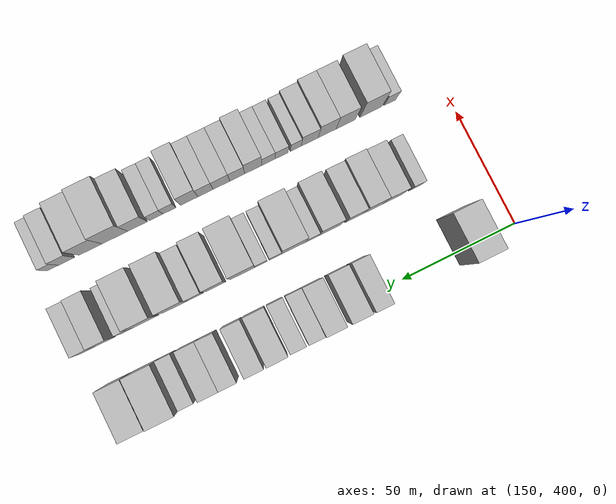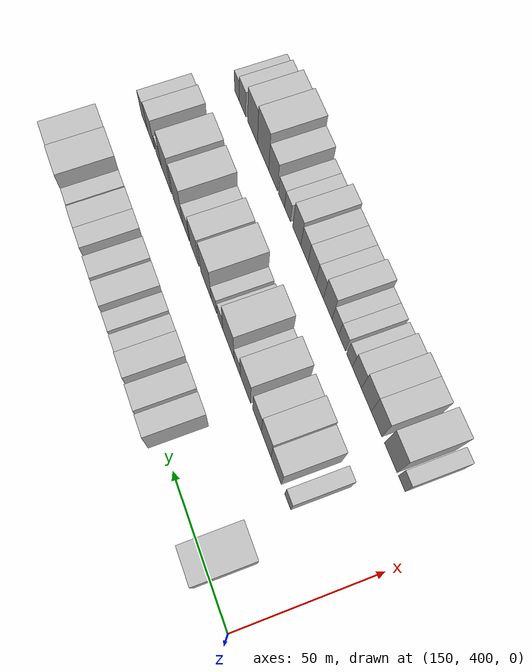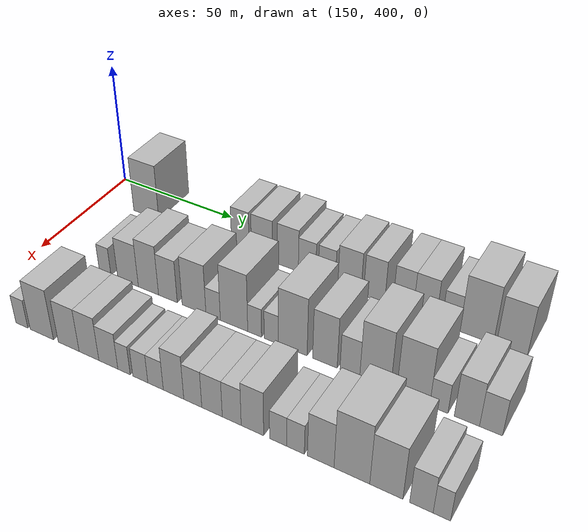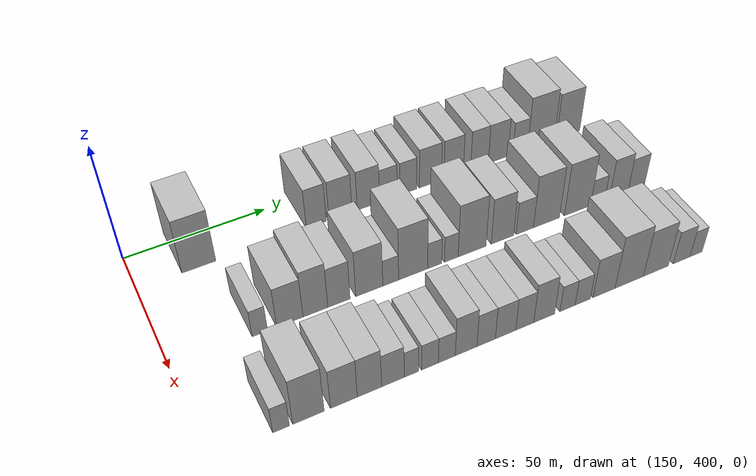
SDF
<sdf version="1.6">
 <world name="default">
  <model name="building_489">
   <static>1</static>
   <pose>155.0000 421.2192 0 0.000000 0.000000 0.000000</pose>
   <link name="link">
    <pose>0 0 12.00 0 0 0</pose>
    <collision name="collision"><geometry><box><size>20.0000 11.6948 24.0000</size></box></geometry></collision>
    <visual name="visual">
     <cast_shadows>0</cast_shadows>
     <geometry><box><size>20.0000 11.6948 24.0000</size></box></geometry>
     <material>
      <script>
       <uri>model://HANNAS_wall/materials/scripts</uri>
       <uri>model://HANNAS_wall/materials/textures</uri>
       <name>vrc/HANNAS_wall</name>
      </script>
     </material>
    </visual>
   </link>
  </model>
  <model name="building_490">
   <static>1</static>
   <pose>155.0000 463.2406 0 0.000000 0.000000 0.000000</pose>
   <link name="link">
    <pose>0 0 9.00 0 0 0</pose>
    <collision name="collision"><geometry><box><size>20.0000 7.4494 18.0000</size></box></geometry></collision>
    <visual name="visual">
     <cast_shadows>0</cast_shadows>
     <geometry><box><size>20.0000 7.4494 18.0000</size></box></geometry>
     <material>
      <script>
       <uri>model://HANNAS_wall/materials/scripts</uri>
       <uri>model://HANNAS_wall/materials/textures</uri>
       <name>vrc/HANNAS_wall</name>
      </script>
     </material>
    </visual>
   </link>
  </model>
  <model name="building_491">
   <static>1</static>
   <pose>155.0000 472.2957 0 0.000000 0.000000 0.000000</pose>
   <link name="link">
    <pose>0 0 9.00 0 0 0</pose>
    <collision name="collision"><geometry><box><size>20.0000 8.6608 18.0000</size></box></geometry></collision>
    <visual name="visual">
     <cast_shadows>0</cast_shadows>
     <geometry><box><size>20.0000 8.6608 18.0000</size></box></geometry>
     <material>
      <script>
       <uri>model://HANNAS_wall/materials/scripts</uri>
       <uri>model://HANNAS_wall/materials/textures</uri>
       <name>vrc/HANNAS_wall</name>
      </script>
     </material>
    </visual>
   </link>
  </model>
  <model name="building_492">
   <static>1</static>
   <pose>155.0000 482.9409 0 0.000000 0.000000 0.000000</pose>
   <link name="link">
    <pose>0 0 9.00 0 0 0</pose>
    <collision name="collision"><geometry><box><size>20.0000 8.6295 18.0000</size></box></geometry></collision>
    <visual name="visual">
     <cast_shadows>0</cast_shadows>
     <geometry><box><size>20.0000 8.6295 18.0000</size></box></geometry>
     <material>
      <script>
       <uri>model://HANNAS_wall/materials/scripts</uri>
       <uri>model://HANNAS_wall/materials/textures</uri>
       <name>vrc/HANNAS_wall</name>
      </script>
     </material>
    </visual>
   </link>
  </model>
  <model name="building_493">
   <static>1</static>
   <pose>155.0000 490.7172 0 0.000000 0.000000 0.000000</pose>
   <link name="link">
    <pose>0 0 7.50 0 0 0</pose>
    <collision name="collision"><geometry><box><size>20.0000 6.9233 15.0000</size></box></geometry></collision>
    <visual name="visual">
     <cast_shadows>0</cast_shadows>
     <geometry><box><size>20.0000 6.9233 15.0000</size></box></geometry>
     <material>
      <script>
       <uri>model://HANNAS_wall/materials/scripts</uri>
       <uri>model://HANNAS_wall/materials/textures</uri>
       <name>vrc/HANNAS_wall</name>
      </script>
     </material>
    </visual>
   </link>
  </model>
  <model name="building_494">
   <static>1</static>
   <pose>155.0000 498.5340 0 0.000000 0.000000 0.000000</pose>
   <link name="link">
    <pose>0 0 7.50 0 0 0</pose>
    <collision name="collision"><geometry><box><size>20.0000 6.7103 15.0000</size></box></geometry></collision>
    <visual name="visual">
     <cast_shadows>0</cast_shadows>
     <geometry><box><size>20.0000 6.7103 15.0000</size></box></geometry>
     <material>
      <script>
       <uri>model://HANNAS_wall/materials/scripts</uri>
       <uri>model://HANNAS_wall/materials/textures</uri>
       <name>vrc/HANNAS_wall</name>
      </script>
     </material>
    </visual>
   </link>
  </model>
  <model name="building_495">
   <static>1</static>
   <pose>155.0000 507.3216 0 0.000000 0.000000 0.000000</pose>
   <link name="link">
    <pose>0 0 9.00 0 0 0</pose>
    <collision name="collision"><geometry><box><size>20.0000 8.8649 18.0000</size></box></geometry></collision>
    <visual name="visual">
     <cast_shadows>0</cast_shadows>
     <geometry><box><size>20.0000 8.8649 18.0000</size></box></geometry>
     <material>
      <script>
       <uri>model://HANNAS_wall/materials/scripts</uri>
       <uri>model://HANNAS_wall/materials/textures</uri>
       <name>vrc/HANNAS_wall</name>
      </script>
     </material>
    </visual>
   </link>
  </model>
  <model name="building_496">
   <static>1</static>
   <pose>155.0000 516.7300 0 0.000000 0.000000 0.000000</pose>
   <link name="link">
    <pose>0 0 9.00 0 0 0</pose>
    <collision name="collision"><geometry><box><size>20.0000 7.9518 18.0000</size></box></geometry></collision>
    <visual name="visual">
     <cast_shadows>0</cast_shadows>
     <geometry><box><size>20.0000 7.9518 18.0000</size></box></geometry>
     <material>
      <script>
       <uri>model://HANNAS_wall/materials/scripts</uri>
       <uri>model://HANNAS_wall/materials/textures</uri>
       <name>vrc/HANNAS_wall</name>
      </script>
     </material>
    </visual>
   </link>
  </model>
  <model name="building_497">
   <static>1</static>
   <pose>155.0000 527.4053 0 0.000000 0.000000 0.000000</pose>
   <link name="link">
    <pose>0 0 9.00 0 0 0</pose>
    <collision name="collision"><geometry><box><size>20.0000 7.3987 18.0000</size></box></geometry></collision>
    <visual name="visual">
     <cast_shadows>0</cast_shadows>
     <geometry><box><size>20.0000 7.3987 18.0000</size></box></geometry>
     <material>
      <script>
       <uri>model://HANNAS_wall/materials/scripts</uri>
       <uri>model://HANNAS_wall/materials/textures</uri>
       <name>vrc/HANNAS_wall</name>
      </script>
     </material>
    </visual>
   </link>
  </model>
  <model name="building_498">
   <static>1</static>
   <pose>155.0000 535.2358 0 0.000000 0.000000 0.000000</pose>
   <link name="link">
    <pose>0 0 9.00 0 0 0</pose>
    <collision name="collision"><geometry><box><size>20.0000 8.2623 18.0000</size></box></geometry></collision>
    <visual name="visual">
     <cast_shadows>0</cast_shadows>
     <geometry><box><size>20.0000 8.2623 18.0000</size></box></geometry>
     <material>
      <script>
       <uri>model://HANNAS_wall/materials/scripts</uri>
       <uri>model://HANNAS_wall/materials/textures</uri>
       <name>vrc/HANNAS_wall</name>
      </script>
     </material>
    </visual>
   </link>
  </model>
  <model name="building_499">
   <static>1</static>
   <pose>155.0000 544.5572 0 0.000000 0.000000 0.000000</pose>
   <link name="link">
    <pose>0 0 7.50 0 0 0</pose>
    <collision name="collision"><geometry><box><size>20.0000 6.3805 15.0000</size></box></geometry></collision>
    <visual name="visual">
     <cast_shadows>0</cast_shadows>
     <geometry><box><size>20.0000 6.3805 15.0000</size></box></geometry>
     <material>
      <script>
       <uri>model://HANNAS_wall/materials/scripts</uri>
       <uri>model://HANNAS_wall/materials/textures</uri>
       <name>vrc/HANNAS_wall</name>
      </script>
     </material>
    </visual>
   </link>
  </model>
  <model name="building_500">
   <static>1</static>
   <pose>155.0000 553.5168 0 0.000000 0.000000 0.000000</pose>
   <link name="link">
    <pose>0 0 12.00 0 0 0</pose>
    <collision name="collision"><geometry><box><size>20.0000 11.5387 24.0000</size></box></geometry></collision>
    <visual name="visual">
     <cast_shadows>0</cast_shadows>
     <geometry><box><size>20.0000 11.5387 24.0000</size></box></geometry>
     <material>
      <script>
       <uri>model://HANNAS_wall/materials/scripts</uri>
       <uri>model://HANNAS_wall/materials/textures</uri>
       <name>vrc/HANNAS_wall</name>
      </script>
     </material>
    </visual>
   </link>
  </model>
  <model name="building_501">
   <static>1</static>
   <pose>155.0000 565.4441 0 0.000000 0.000000 0.000000</pose>
   <link name="link">
    <pose>0 0 10.50 0 0 0</pose>
    <collision name="collision"><geometry><box><size>20.0000 10.3159 21.0000</size></box></geometry></collision>
    <visual name="visual">
     <cast_shadows>0</cast_shadows>
     <geometry><box><size>20.0000 10.3159 21.0000</size></box></geometry>
     <material>
      <script>
       <uri>model://HANNAS_wall/materials/scripts</uri>
       <uri>model://HANNAS_wall/materials/textures</uri>
       <name>vrc/HANNAS_wall</name>
      </script>
     </material>
    </visual>
   </link>
  </model>
  <model name="building_605">
   <static>1</static>
   <pose>190.0000 429.1288 0 0.000000 0.000000 0.000000</pose>
   <link name="link">
    <pose>0 0 6.00 0 0 0</pose>
    <collision name="collision"><geometry><box><size>20.0000 5.1144 12.0000</size></box></geometry></collision>
    <visual name="visual">
     <cast_shadows>0</cast_shadows>
     <geometry><box><size>20.0000 5.1144 12.0000</size></box></geometry>
     <material>
      <script>
       <uri>model://HANNAS_wall/materials/scripts</uri>
       <uri>model://HANNAS_wall/materials/textures</uri>
       <name>vrc/HANNAS_wall</name>
      </script>
     </material>
    </visual>
   </link>
  </model>
  <model name="building_606">
   <static>1</static>
   <pose>190.0000 439.1338 0 0.000000 0.000000 0.000000</pose>
   <link name="link">
    <pose>0 0 9.00 0 0 0</pose>
    <collision name="collision"><geometry><box><size>20.0000 8.8955 18.0000</size></box></geometry></collision>
    <visual name="visual">
     <cast_shadows>0</cast_shadows>
     <geometry><box><size>20.0000 8.8955 18.0000</size></box></geometry>
     <material>
      <script>
       <uri>model://HANNAS_wall/materials/scripts</uri>
       <uri>model://HANNAS_wall/materials/textures</uri>
       <name>vrc/HANNAS_wall</name>
      </script>
     </material>
    </visual>
   </link>
  </model>
  <model name="building_607">
   <static>1</static>
   <pose>190.0000 447.8510 0 0.000000 0.000000 0.000000</pose>
   <link name="link">
    <pose>0 0 10.50 0 0 0</pose>
    <collision name="collision"><geometry><box><size>20.0000 8.5389 21.0000</size></box></geometry></collision>
    <visual name="visual">
     <cast_shadows>0</cast_shadows>
     <geometry><box><size>20.0000 8.5389 21.0000</size></box></geometry>
     <material>
      <script>
       <uri>model://HANNAS_wall/materials/scripts</uri>
       <uri>model://HANNAS_wall/materials/textures</uri>
       <name>vrc/HANNAS_wall</name>
      </script>
     </material>
    </visual>
   </link>
  </model>
  <model name="building_608">
   <static>1</static>
   <pose>190.0000 456.0002 0 0.000000 0.000000 0.000000</pose>
   <link name="link">
    <pose>0 0 9.00 0 0 0</pose>
    <collision name="collision"><geometry><box><size>20.0000 7.7595 18.0000</size></box></geometry></collision>
    <visual name="visual">
     <cast_shadows>0</cast_shadows>
     <geometry><box><size>20.0000 7.7595 18.0000</size></box></geometry>
     <material>
      <script>
       <uri>model://HANNAS_wall/materials/scripts</uri>
       <uri>model://HANNAS_wall/materials/textures</uri>
       <name>vrc/HANNAS_wall</name>
      </script>
     </material>
    </visual>
   </link>
  </model>
  <model name="building_609">
   <static>1</static>
   <pose>190.0000 466.7004 0 0.000000 0.000000 0.000000</pose>
   <link name="link">
    <pose>0 0 10.50 0 0 0</pose>
    <collision name="collision"><geometry><box><size>20.0000 9.6409 21.0000</size></box></geometry></collision>
    <visual name="visual">
     <cast_shadows>0</cast_shadows>
     <geometry><box><size>20.0000 9.6409 21.0000</size></box></geometry>
     <material>
      <script>
       <uri>model://HANNAS_wall/materials/scripts</uri>
       <uri>model://HANNAS_wall/materials/textures</uri>
       <name>vrc/HANNAS_wall</name>
      </script>
     </material>
    </visual>
   </link>
  </model>
  <model name="building_610">
   <static>1</static>
   <pose>190.0000 474.3763 0 0.000000 0.000000 0.000000</pose>
   <link name="link">
    <pose>0 0 6.00 0 0 0</pose>
    <collision name="collision"><geometry><box><size>20.0000 5.7109 12.0000</size></box></geometry></collision>
    <visual name="visual">
     <cast_shadows>0</cast_shadows>
     <geometry><box><size>20.0000 5.7109 12.0000</size></box></geometry>
     <material>
      <script>
       <uri>model://HANNAS_wall/materials/scripts</uri>
       <uri>model://HANNAS_wall/materials/textures</uri>
       <name>vrc/HANNAS_wall</name>
      </script>
     </material>
    </visual>
   </link>
  </model>
  <model name="building_611">
   <static>1</static>
   <pose>190.0000 482.5522 0 0.000000 0.000000 0.000000</pose>
   <link name="link">
    <pose>0 0 12.00 0 0 0</pose>
    <collision name="collision"><geometry><box><size>20.0000 10.6408 24.0000</size></box></geometry></collision>
    <visual name="visual">
     <cast_shadows>0</cast_shadows>
     <geometry><box><size>20.0000 10.6408 24.0000</size></box></geometry>
     <material>
      <script>
       <uri>model://HANNAS_wall/materials/scripts</uri>
       <uri>model://HANNAS_wall/materials/textures</uri>
       <name>vrc/HANNAS_wall</name>
      </script>
     </material>
    </visual>
   </link>
  </model>
  <model name="building_612">
   <static>1</static>
   <pose>190.0000 490.5013 0 0.000000 0.000000 0.000000</pose>
   <link name="link">
    <pose>0 0 6.00 0 0 0</pose>
    <collision name="collision"><geometry><box><size>20.0000 5.2575 12.0000</size></box></geometry></collision>
    <visual name="visual">
     <cast_shadows>0</cast_shadows>
     <geometry><box><size>20.0000 5.2575 12.0000</size></box></geometry>
     <material>
      <script>
       <uri>model://HANNAS_wall/materials/scripts</uri>
       <uri>model://HANNAS_wall/materials/textures</uri>
       <name>vrc/HANNAS_wall</name>
      </script>
     </material>
    </visual>
   </link>
  </model>
  <model name="building_613">
   <static>1</static>
   <pose>190.0000 496.7268 0 0.000000 0.000000 0.000000</pose>
   <link name="link">
    <pose>0 0 6.00 0 0 0</pose>
    <collision name="collision"><geometry><box><size>20.0000 5.1936 12.0000</size></box></geometry></collision>
    <visual name="visual">
     <cast_shadows>0</cast_shadows>
     <geometry><box><size>20.0000 5.1936 12.0000</size></box></geometry>
     <material>
      <script>
       <uri>model://HANNAS_wall/materials/scripts</uri>
       <uri>model://HANNAS_wall/materials/textures</uri>
       <name>vrc/HANNAS_wall</name>
      </script>
     </material>
    </visual>
   </link>
  </model>
  <model name="building_614">
   <static>1</static>
   <pose>190.0000 504.6589 0 0.000000 0.000000 0.000000</pose>
   <link name="link">
    <pose>0 0 12.00 0 0 0</pose>
    <collision name="collision"><geometry><box><size>20.0000 10.6708 24.0000</size></box></geometry></collision>
    <visual name="visual">
     <cast_shadows>0</cast_shadows>
     <geometry><box><size>20.0000 10.6708 24.0000</size></box></geometry>
     <material>
      <script>
       <uri>model://HANNAS_wall/materials/scripts</uri>
       <uri>model://HANNAS_wall/materials/textures</uri>
       <name>vrc/HANNAS_wall</name>
      </script>
     </material>
    </visual>
   </link>
  </model>
  <model name="building_615">
   <static>1</static>
   <pose>190.0000 516.3766 0 0.000000 0.000000 0.000000</pose>
   <link name="link">
    <pose>0 0 10.50 0 0 0</pose>
    <collision name="collision"><geometry><box><size>20.0000 8.7646 21.0000</size></box></geometry></collision>
    <visual name="visual">
     <cast_shadows>0</cast_shadows>
     <geometry><box><size>20.0000 8.7646 21.0000</size></box></geometry>
     <material>
      <script>
       <uri>model://HANNAS_wall/materials/scripts</uri>
       <uri>model://HANNAS_wall/materials/textures</uri>
       <name>vrc/HANNAS_wall</name>
      </script>
     </material>
    </visual>
   </link>
  </model>
  <model name="building_616">
   <static>1</static>
   <pose>190.0000 525.1908 0 0.000000 0.000000 0.000000</pose>
   <link name="link">
    <pose>0 0 7.50 0 0 0</pose>
    <collision name="collision"><geometry><box><size>20.0000 6.8639 15.0000</size></box></geometry></collision>
    <visual name="visual">
     <cast_shadows>0</cast_shadows>
     <geometry><box><size>20.0000 6.8639 15.0000</size></box></geometry>
     <material>
      <script>
       <uri>model://HANNAS_wall/materials/scripts</uri>
       <uri>model://HANNAS_wall/materials/textures</uri>
       <name>vrc/HANNAS_wall</name>
      </script>
     </material>
    </visual>
   </link>
  </model>
  <model name="building_617">
   <static>1</static>
   <pose>190.0000 533.8793 0 0.000000 0.000000 0.000000</pose>
   <link name="link">
    <pose>0 0 12.00 0 0 0</pose>
    <collision name="collision"><geometry><box><size>20.0000 10.5131 24.0000</size></box></geometry></collision>
    <visual name="visual">
     <cast_shadows>0</cast_shadows>
     <geometry><box><size>20.0000 10.5131 24.0000</size></box></geometry>
     <material>
      <script>
       <uri>model://HANNAS_wall/materials/scripts</uri>
       <uri>model://HANNAS_wall/materials/textures</uri>
       <name>vrc/HANNAS_wall</name>
      </script>
     </material>
    </visual>
   </link>
  </model>
  <model name="building_618">
   <static>1</static>
   <pose>190.0000 546.5808 0 0.000000 0.000000 0.000000</pose>
   <link name="link">
    <pose>0 0 12.00 0 0 0</pose>
    <collision name="collision"><geometry><box><size>20.0000 10.8900 24.0000</size></box></geometry></collision>
    <visual name="visual">
     <cast_shadows>0</cast_shadows>
     <geometry><box><size>20.0000 10.8900 24.0000</size></box></geometry>
     <material>
      <script>
       <uri>model://HANNAS_wall/materials/scripts</uri>
       <uri>model://HANNAS_wall/materials/textures</uri>
       <name>vrc/HANNAS_wall</name>
      </script>
     </material>
    </visual>
   </link>
  </model>
  <model name="building_619">
   <static>1</static>
   <pose>190.0000 554.9708 0 0.000000 0.000000 0.000000</pose>
   <link name="link">
    <pose>0 0 6.00 0 0 0</pose>
    <collision name="collision"><geometry><box><size>20.0000 5.8899 12.0000</size></box></geometry></collision>
    <visual name="visual">
     <cast_shadows>0</cast_shadows>
     <geometry><box><size>20.0000 5.8899 12.0000</size></box></geometry>
     <material>
      <script>
       <uri>model://HANNAS_wall/materials/scripts</uri>
       <uri>model://HANNAS_wall/materials/textures</uri>
       <name>vrc/HANNAS_wall</name>
      </script>
     </material>
    </visual>
   </link>
  </model>
  <model name="building_620">
   <static>1</static>
   <pose>190.0000 563.8842 0 0.000000 0.000000 0.000000</pose>
   <link name="link">
    <pose>0 0 9.00 0 0 0</pose>
    <collision name="collision"><geometry><box><size>20.0000 7.9370 18.0000</size></box></geometry></collision>
    <visual name="visual">
     <cast_shadows>0</cast_shadows>
     <geometry><box><size>20.0000 7.9370 18.0000</size></box></geometry>
     <material>
      <script>
       <uri>model://HANNAS_wall/materials/scripts</uri>
       <uri>model://HANNAS_wall/materials/textures</uri>
       <name>vrc/HANNAS_wall</name>
      </script>
     </material>
    </visual>
   </link>
  </model>
  <model name="building_621">
   <static>1</static>
   <pose>190.0000 571.3969 0 0.000000 0.000000 0.000000</pose>
   <link name="link">
    <pose>0 0 7.50 0 0 0</pose>
    <collision name="collision"><geometry><box><size>20.0000 7.0884 15.0000</size></box></geometry></collision>
    <visual name="visual">
     <cast_shadows>0</cast_shadows>
     <geometry><box><size>20.0000 7.0884 15.0000</size></box></geometry>
     <material>
      <script>
       <uri>model://HANNAS_wall/materials/scripts</uri>
       <uri>model://HANNAS_wall/materials/textures</uri>
       <name>vrc/HANNAS_wall</name>
      </script>
     </material>
    </visual>
   </link>
  </model>
  <model name="building_722">
   <static>1</static>
   <pose>225.0000 422.0833 0 0.000000 0.000000 0.000000</pose>
   <link name="link">
    <pose>0 0 6.00 0 0 0</pose>
    <collision name="collision"><geometry><box><size>20.0000 5.1876 12.0000</size></box></geometry></collision>
    <visual name="visual">
     <cast_shadows>0</cast_shadows>
     <geometry><box><size>20.0000 5.1876 12.0000</size></box></geometry>
     <material>
      <script>
       <uri>model://HANNAS_wall/materials/scripts</uri>
       <uri>model://HANNAS_wall/materials/textures</uri>
       <name>vrc/HANNAS_wall</name>
      </script>
     </material>
    </visual>
   </link>
  </model>
  <model name="building_723">
   <static>1</static>
   <pose>225.0000 430.6164 0 0.000000 0.000000 0.000000</pose>
   <link name="link">
    <pose>0 0 10.50 0 0 0</pose>
    <collision name="collision"><geometry><box><size>20.0000 9.8786 21.0000</size></box></geometry></collision>
    <visual name="visual">
     <cast_shadows>0</cast_shadows>
     <geometry><box><size>20.0000 9.8786 21.0000</size></box></geometry>
     <material>
      <script>
       <uri>model://HANNAS_wall/materials/scripts</uri>
       <uri>model://HANNAS_wall/materials/textures</uri>
       <name>vrc/HANNAS_wall</name>
      </script>
     </material>
    </visual>
   </link>
  </model>
  <model name="building_724">
   <static>1</static>
   <pose>225.0000 441.8655 0 0.000000 0.000000 0.000000</pose>
   <link name="link">
    <pose>0 0 9.00 0 0 0</pose>
    <collision name="collision"><geometry><box><size>20.0000 8.6196 18.0000</size></box></geometry></collision>
    <visual name="visual">
     <cast_shadows>0</cast_shadows>
     <geometry><box><size>20.0000 8.6196 18.0000</size></box></geometry>
     <material>
      <script>
       <uri>model://HANNAS_wall/materials/scripts</uri>
       <uri>model://HANNAS_wall/materials/textures</uri>
       <name>vrc/HANNAS_wall</name>
      </script>
     </material>
    </visual>
   </link>
  </model>
  <model name="building_725">
   <static>1</static>
   <pose>225.0000 450.1666 0 0.000000 0.000000 0.000000</pose>
   <link name="link">
    <pose>0 0 9.00 0 0 0</pose>
    <collision name="collision"><geometry><box><size>20.0000 7.9827 18.0000</size></box></geometry></collision>
    <visual name="visual">
     <cast_shadows>0</cast_shadows>
     <geometry><box><size>20.0000 7.9827 18.0000</size></box></geometry>
     <material>
      <script>
       <uri>model://HANNAS_wall/materials/scripts</uri>
       <uri>model://HANNAS_wall/materials/textures</uri>
       <name>vrc/HANNAS_wall</name>
      </script>
     </material>
    </visual>
   </link>
  </model>
  <model name="building_726">
   <static>1</static>
   <pose>225.0000 457.9073 0 0.000000 0.000000 0.000000</pose>
   <link name="link">
    <pose>0 0 7.50 0 0 0</pose>
    <collision name="collision"><geometry><box><size>20.0000 7.4986 15.0000</size></box></geometry></collision>
    <visual name="visual">
     <cast_shadows>0</cast_shadows>
     <geometry><box><size>20.0000 7.4986 15.0000</size></box></geometry>
     <material>
      <script>
       <uri>model://HANNAS_wall/materials/scripts</uri>
       <uri>model://HANNAS_wall/materials/textures</uri>
       <name>vrc/HANNAS_wall</name>
      </script>
     </material>
    </visual>
   </link>
  </model>
  <model name="building_727">
   <static>1</static>
   <pose>225.0000 464.0654 0 0.000000 0.000000 0.000000</pose>
   <link name="link">
    <pose>0 0 6.00 0 0 0</pose>
    <collision name="collision"><geometry><box><size>20.0000 4.8176 12.0000</size></box></geometry></collision>
    <visual name="visual">
     <cast_shadows>0</cast_shadows>
     <geometry><box><size>20.0000 4.8176 12.0000</size></box></geometry>
     <material>
      <script>
       <uri>model://HANNAS_wall/materials/scripts</uri>
       <uri>model://HANNAS_wall/materials/textures</uri>
       <name>vrc/HANNAS_wall</name>
      </script>
     </material>
    </visual>
   </link>
  </model>
  <model name="building_728">
   <static>1</static>
   <pose>225.0000 470.3537 0 0.000000 0.000000 0.000000</pose>
   <link name="link">
    <pose>0 0 6.00 0 0 0</pose>
    <collision name="collision"><geometry><box><size>20.0000 5.7589 12.0000</size></box></geometry></collision>
    <visual name="visual">
     <cast_shadows>0</cast_shadows>
     <geometry><box><size>20.0000 5.7589 12.0000</size></box></geometry>
     <material>
      <script>
       <uri>model://HANNAS_wall/materials/scripts</uri>
       <uri>model://HANNAS_wall/materials/textures</uri>
       <name>vrc/HANNAS_wall</name>
      </script>
     </material>
    </visual>
   </link>
  </model>
  <model name="building_729">
   <static>1</static>
   <pose>225.0000 476.1507 0 0.000000 0.000000 0.000000</pose>
   <link name="link">
    <pose>0 0 6.00 0 0 0</pose>
    <collision name="collision"><geometry><box><size>20.0000 5.8350 12.0000</size></box></geometry></collision>
    <visual name="visual">
     <cast_shadows>0</cast_shadows>
     <geometry><box><size>20.0000 5.8350 12.0000</size></box></geometry>
     <material>
      <script>
       <uri>model://HANNAS_wall/materials/scripts</uri>
       <uri>model://HANNAS_wall/materials/textures</uri>
       <name>vrc/HANNAS_wall</name>
      </script>
     </material>
    </visual>
   </link>
  </model>
  <model name="building_730">
   <static>1</static>
   <pose>225.0000 482.8566 0 0.000000 0.000000 0.000000</pose>
   <link name="link">
    <pose>0 0 9.00 0 0 0</pose>
    <collision name="collision"><geometry><box><size>20.0000 7.5768 18.0000</size></box></geometry></collision>
    <visual name="visual">
     <cast_shadows>0</cast_shadows>
     <geometry><box><size>20.0000 7.5768 18.0000</size></box></geometry>
     <material>
      <script>
       <uri>model://HANNAS_wall/materials/scripts</uri>
       <uri>model://HANNAS_wall/materials/textures</uri>
       <name>vrc/HANNAS_wall</name>
      </script>
     </material>
    </visual>
   </link>
  </model>
  <model name="building_731">
   <static>1</static>
   <pose>225.0000 489.9224 0 0.000000 0.000000 0.000000</pose>
   <link name="link">
    <pose>0 0 7.50 0 0 0</pose>
    <collision name="collision"><geometry><box><size>20.0000 6.5549 15.0000</size></box></geometry></collision>
    <visual name="visual">
     <cast_shadows>0</cast_shadows>
     <geometry><box><size>20.0000 6.5549 15.0000</size></box></geometry>
     <material>
      <script>
       <uri>model://HANNAS_wall/materials/scripts</uri>
       <uri>model://HANNAS_wall/materials/textures</uri>
       <name>vrc/HANNAS_wall</name>
      </script>
     </material>
    </visual>
   </link>
  </model>
  <model name="building_732">
   <static>1</static>
   <pose>225.0000 496.8477 0 0.000000 0.000000 0.000000</pose>
   <link name="link">
    <pose>0 0 7.50 0 0 0</pose>
    <collision name="collision"><geometry><box><size>20.0000 7.2958 15.0000</size></box></geometry></collision>
    <visual name="visual">
     <cast_shadows>0</cast_shadows>
     <geometry><box><size>20.0000 7.2958 15.0000</size></box></geometry>
     <material>
      <script>
       <uri>model://HANNAS_wall/materials/scripts</uri>
       <uri>model://HANNAS_wall/materials/textures</uri>
       <name>vrc/HANNAS_wall</name>
      </script>
     </material>
    </visual>
   </link>
  </model>
  <model name="building_733">
   <static>1</static>
   <pose>225.0000 503.8005 0 0.000000 0.000000 0.000000</pose>
   <link name="link">
    <pose>0 0 7.50 0 0 0</pose>
    <collision name="collision"><geometry><box><size>20.0000 6.6097 15.0000</size></box></geometry></collision>
    <visual name="visual">
     <cast_shadows>0</cast_shadows>
     <geometry><box><size>20.0000 6.6097 15.0000</size></box></geometry>
     <material>
      <script>
       <uri>model://HANNAS_wall/materials/scripts</uri>
       <uri>model://HANNAS_wall/materials/textures</uri>
       <name>vrc/HANNAS_wall</name>
      </script>
     </material>
    </visual>
   </link>
  </model>
  <model name="building_734">
   <static>1</static>
   <pose>225.0000 510.9504 0 0.000000 0.000000 0.000000</pose>
   <link name="link">
    <pose>0 0 9.00 0 0 0</pose>
    <collision name="collision"><geometry><box><size>20.0000 7.6903 18.0000</size></box></geometry></collision>
    <visual name="visual">
     <cast_shadows>0</cast_shadows>
     <geometry><box><size>20.0000 7.6903 18.0000</size></box></geometry>
     <material>
      <script>
       <uri>model://HANNAS_wall/materials/scripts</uri>
       <uri>model://HANNAS_wall/materials/textures</uri>
       <name>vrc/HANNAS_wall</name>
      </script>
     </material>
    </visual>
   </link>
  </model>
  <model name="building_735">
   <static>1</static>
   <pose>225.0000 519.6412 0 0.000000 0.000000 0.000000</pose>
   <link name="link">
    <pose>0 0 6.00 0 0 0</pose>
    <collision name="collision"><geometry><box><size>20.0000 5.6913 12.0000</size></box></geometry></collision>
    <visual name="visual">
     <cast_shadows>0</cast_shadows>
     <geometry><box><size>20.0000 5.6913 12.0000</size></box></geometry>
     <material>
      <script>
       <uri>model://HANNAS_wall/materials/scripts</uri>
       <uri>model://HANNAS_wall/materials/textures</uri>
       <name>vrc/HANNAS_wall</name>
      </script>
     </material>
    </visual>
   </link>
  </model>
  <model name="building_736">
   <static>1</static>
   <pose>225.0000 525.4042 0 0.000000 0.000000 0.000000</pose>
   <link name="link">
    <pose>0 0 6.00 0 0 0</pose>
    <collision name="collision"><geometry><box><size>20.0000 5.8346 12.0000</size></box></geometry></collision>
    <visual name="visual">
     <cast_shadows>0</cast_shadows>
     <geometry><box><size>20.0000 5.8346 12.0000</size></box></geometry>
     <material>
      <script>
       <uri>model://HANNAS_wall/materials/scripts</uri>
       <uri>model://HANNAS_wall/materials/textures</uri>
       <name>vrc/HANNAS_wall</name>
      </script>
     </material>
    </visual>
   </link>
  </model>
  <model name="building_737">
   <static>1</static>
   <pose>225.0000 533.5968 0 0.000000 0.000000 0.000000</pose>
   <link name="link">
    <pose>0 0 9.00 0 0 0</pose>
    <collision name="collision"><geometry><box><size>20.0000 8.5507 18.0000</size></box></geometry></collision>
    <visual name="visual">
     <cast_shadows>0</cast_shadows>
     <geometry><box><size>20.0000 8.5507 18.0000</size></box></geometry>
     <material>
      <script>
       <uri>model://HANNAS_wall/materials/scripts</uri>
       <uri>model://HANNAS_wall/materials/textures</uri>
       <name>vrc/HANNAS_wall</name>
      </script>
     </material>
    </visual>
   </link>
  </model>
  <model name="building_738">
   <static>1</static>
   <pose>225.0000 543.4548 0 0.000000 0.000000 0.000000</pose>
   <link name="link">
    <pose>0 0 12.00 0 0 0</pose>
    <collision name="collision"><geometry><box><size>20.0000 11.1651 24.0000</size></box></geometry></collision>
    <visual name="visual">
     <cast_shadows>0</cast_shadows>
     <geometry><box><size>20.0000 11.1651 24.0000</size></box></geometry>
     <material>
      <script>
       <uri>model://HANNAS_wall/materials/scripts</uri>
       <uri>model://HANNAS_wall/materials/textures</uri>
       <name>vrc/HANNAS_wall</name>
      </script>
     </material>
    </visual>
   </link>
  </model>
  <model name="building_739">
   <static>1</static>
   <pose>225.0000 554.0493 0 0.000000 0.000000 0.000000</pose>
   <link name="link">
    <pose>0 0 10.50 0 0 0</pose>
    <collision name="collision"><geometry><box><size>20.0000 10.0239 21.0000</size></box></geometry></collision>
    <visual name="visual">
     <cast_shadows>0</cast_shadows>
     <geometry><box><size>20.0000 10.0239 21.0000</size></box></geometry>
     <material>
      <script>
       <uri>model://HANNAS_wall/materials/scripts</uri>
       <uri>model://HANNAS_wall/materials/textures</uri>
       <name>vrc/HANNAS_wall</name>
      </script>
     </material>
    </visual>
   </link>
  </model>
  <model name="building_740">
   <static>1</static>
   <pose>225.0000 564.5108 0 0.000000 0.000000 0.000000</pose>
   <link name="link">
    <pose>0 0 7.50 0 0 0</pose>
    <collision name="collision"><geometry><box><size>20.0000 6.8991 15.0000</size></box></geometry></collision>
    <visual name="visual">
     <cast_shadows>0</cast_shadows>
     <geometry><box><size>20.0000 6.8991 15.0000</size></box></geometry>
     <material>
      <script>
       <uri>model://HANNAS_wall/materials/scripts</uri>
       <uri>model://HANNAS_wall/materials/textures</uri>
       <name>vrc/HANNAS_wall</name>
      </script>
     </material>
    </visual>
   </link>
  </model>
  <model name="building_741">
   <static>1</static>
   <pose>225.0000 570.4669 0 0.000000 0.000000 0.000000</pose>
   <link name="link">
    <pose>0 0 6.00 0 0 0</pose>
    <collision name="collision"><geometry><box><size>20.0000 5.0130 12.0000</size></box></geometry></collision>
    <visual name="visual">
     <cast_shadows>0</cast_shadows>
     <geometry><box><size>20.0000 5.0130 12.0000</size></box></geometry>
     <material>
      <script>
       <uri>model://HANNAS_wall/materials/scripts</uri>
       <uri>model://HANNAS_wall/materials/textures</uri>
       <name>vrc/HANNAS_wall</name>
      </script>
     </material>
    </visual>
   </link>
  </model>
 </world>
</sdf>
